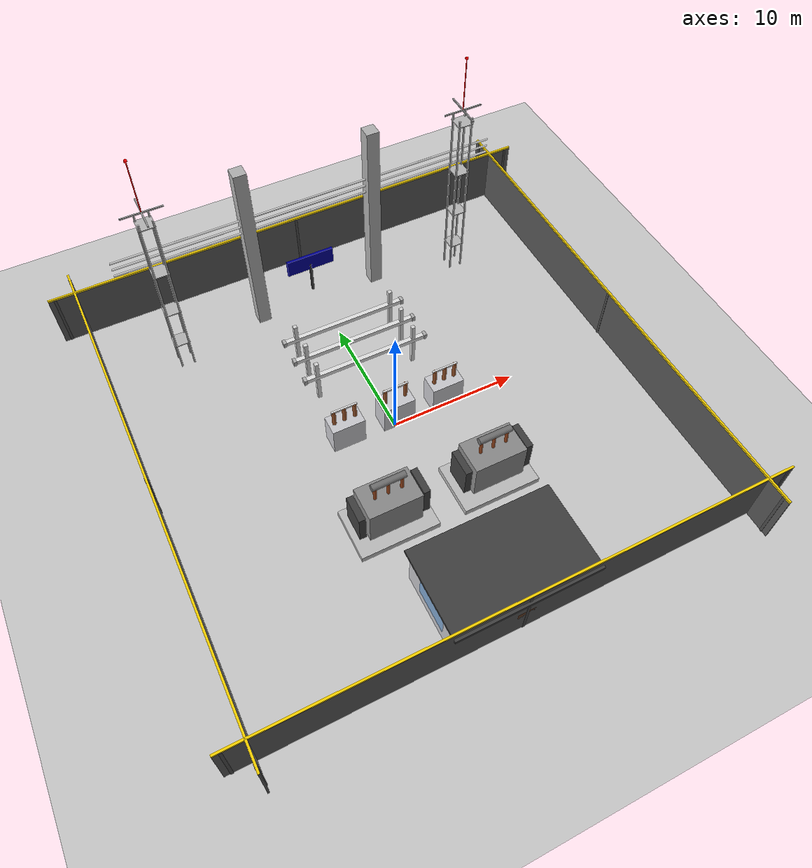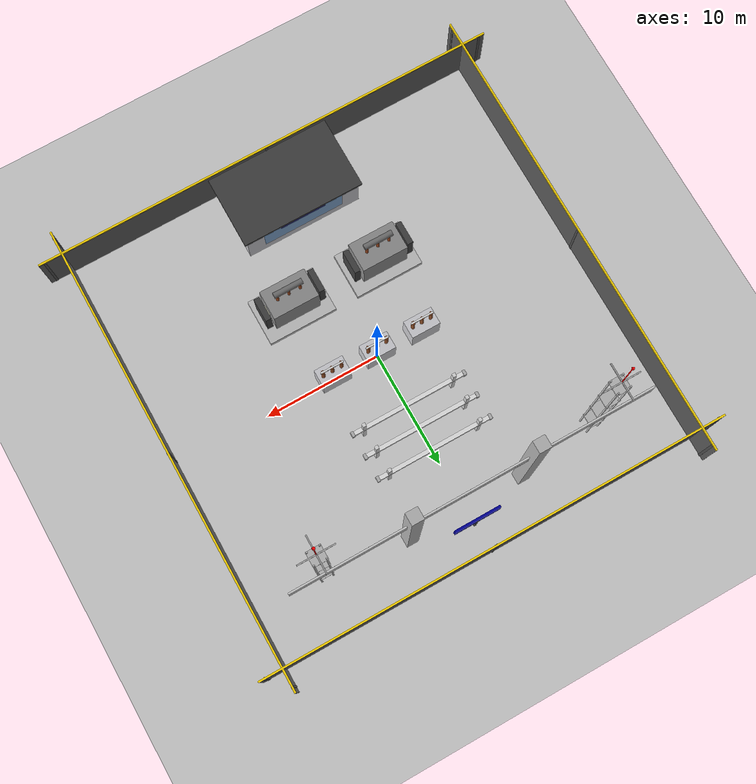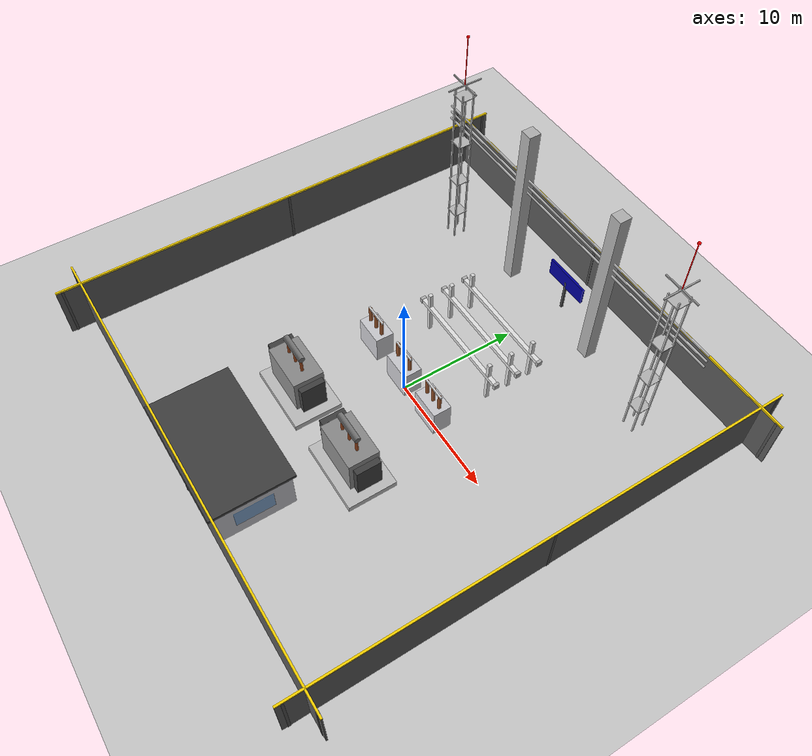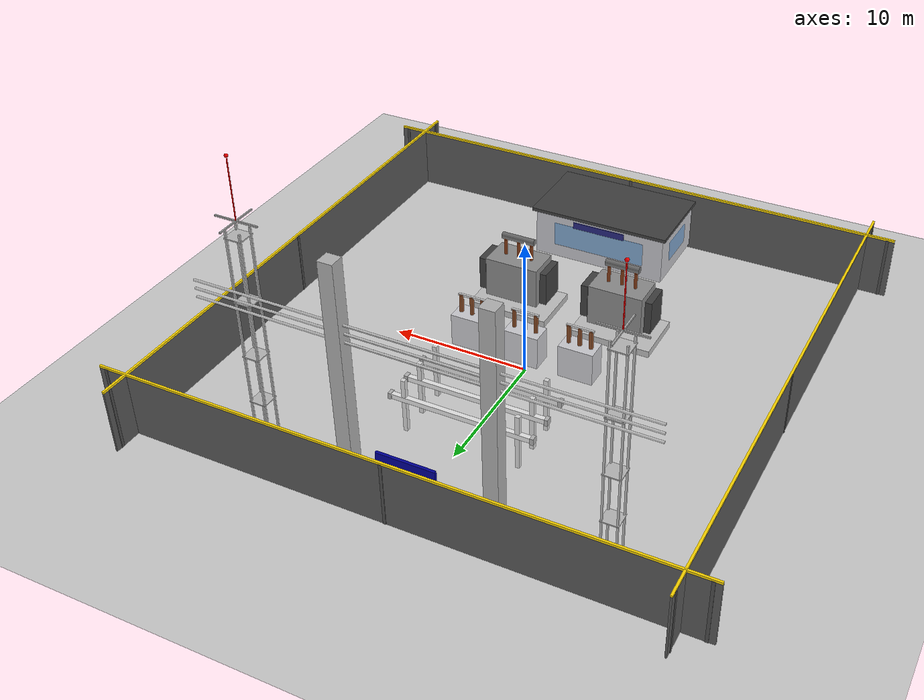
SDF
<?xml version="1.0"?>

<sdf version="1.10">

<world name="substation">

  <!-- GROUND -->
  <include>
    <uri>model://ground</uri>
    <name>ground</name>
    <pose>0 0 -0.1 0 0 0</pose>
  </include>

  <!-- FENCE -->
  <include><uri>model://fence</uri><name>fence_north</name><pose>0 18 1.25 0 0 0</pose></include>
  <include><uri>model://fence</uri><name>fence_south</name><pose>0 -18 1.25 0 0 0</pose></include>
  <include><uri>model://fence</uri><name>fence_east</name><pose>18 0 1.25 0 0 1.57</pose></include>
  <include><uri>model://fence</uri><name>fence_west</name><pose>-18 0 1.25 0 0 1.57</pose></include>

  <!-- TRANSMISSION TOWERS -->
  <include>
    <uri>model://tower</uri>
    <name>tower_left</name>
    <pose>-5 14 8 0 0 0</pose>
  </include>

  <include>
    <uri>model://tower</uri>
    <name>tower_right</name>
    <pose>5 14 8 0 0 0</pose>
  </include>

  <!-- 3 PHASE CONDUCTORS -->
  <include><uri>model://conductor</uri><name>left_A</name><pose>-5 14 10.0 0 0 0</pose></include>
  <include><uri>model://conductor</uri><name>left_B</name><pose>-5 14 10.6 0 0 0</pose></include>
  <include><uri>model://conductor</uri><name>left_C</name><pose>-5 14 11.2 0 0 0</pose></include>

  <include><uri>model://conductor</uri><name>right_A</name><pose>5 14 10.0 0 0 0</pose></include>
  <include><uri>model://conductor</uri><name>right_B</name><pose>5 14 10.6 0 0 0</pose></include>
  <include><uri>model://conductor</uri><name>right_C</name><pose>5 14 11.2 0 0 0</pose></include>

  <!-- BUSBAR SUPPORTS -->
  <include><uri>model://busbar_support</uri><name>support_A_left</name><pose>-4 5 0 0 0 0</pose></include>
  <include><uri>model://busbar_support</uri><name>support_A_right</name><pose>4 5 0 0 0 0</pose></include>

  <include><uri>model://busbar_support</uri><name>support_B_left</name><pose>-4 7 0 0 0 0</pose></include>
  <include><uri>model://busbar_support</uri><name>support_B_right</name><pose>4 7 0 0 0 0</pose></include>

  <include><uri>model://busbar_support</uri><name>support_C_left</name><pose>-4 9 0 0 0 0</pose></include>
  <include><uri>model://busbar_support</uri><name>support_C_right</name><pose>4 9 0 0 0 0</pose></include>

  <!-- 3 PHASE BUSBARS -->
  <include>
    <uri>model://busbar</uri>
    <name>busbar_A</name>
    <pose>0 5 2.5 0 0 0</pose>
  </include>

  <include>
    <uri>model://busbar</uri>
    <name>busbar_B</name>
    <pose>0 7 2.5 0 0 0</pose>
  </include>

  <include>
    <uri>model://busbar</uri>
    <name>busbar_C</name>
    <pose>0 9 2.5 0 0 0</pose>
  </include>

  <!-- BREAKERS -->
  <include>
    <uri>model://breaker</uri>
    <name>breaker_left</name>
    <pose>-4 0 1 0 0 0</pose>
  </include>

  <include>
    <uri>model://breaker</uri>
    <name>breaker_center</name>
    <pose>0 0 1 0 0 0</pose>
  </include>

  <include>
    <uri>model://breaker</uri>
    <name>breaker_right</name>
    <pose>4 0 1 0 0 0</pose>
  </include>

  <!-- TRANSFORMER PADS -->
  <include>
    <uri>model://transformer_pad</uri>
    <name>pad_left</name>
    <pose>-4 -7 0 0 0 0</pose>
  </include>

  <include>
    <uri>model://transformer_pad</uri>
    <name>pad_right</name>
    <pose>4 -7 0 0 0 0</pose>
  </include>

  <!-- TRANSFORMERS -->
  <include>
    <uri>model://transformer</uri>
    <name>transformer_left</name>
    <pose>-4 -7 1 0 0 0</pose>
  </include>

  <include>
    <uri>model://transformer</uri>
    <name>transformer_right</name>
    <pose>4 -7 1 0 0 0</pose>
  </include>

  <!-- CONTROL ROOM -->
  <include>
    <uri>model://control_room</uri>
    <name>control_room_main</name>
    <pose>0 -15 1.5 0 0 0</pose>
  </include>

  <!-- LIGHTNING TOWERS -->
  <include>
    <uri>model://lightning_arrester</uri>
    <name>arrester_left</name>
    <pose>-12 13 0 0 0 0</pose>
  </include>

  <include>
    <uri>model://lightning_arrester</uri>
    <name>arrester_right</name>
    <pose>12 13 0 0 0 0</pose>
  </include>

  <!-- NAME BOARD -->
  <include>
    <uri>model://name_board</uri>
    <name>substation_name_board</name>
    <pose>0 15.5 0 0 0 0</pose>
  </include>

  <!-- SUN -->
  <light name="sun" type="directional">
    <pose>0 0 50 0 0 0</pose>
    <cast_shadows>true</cast_shadows>
    <diffuse>1 1 1 1</diffuse>
    <specular>0.4 0.4 0.4 1</specular>
    <direction>-0.5 -0.4 -1</direction>
  </light>

</world>

</sdf>

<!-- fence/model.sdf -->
<sdf version="1.10">

  <model name="fence">

    <static>true</static>

    <link name="link">

      <!-- MAIN FENCE -->

      <visual name="fence_panel">

        <pose>0 0 2.25 0 0 0</pose>

        <geometry>
          <box>
            <size>40 0.12 4.5</size>
          </box>
        </geometry>

        <material>
          <ambient>0.25 0.25 0.25 1</ambient>
          <diffuse>0.35 0.35 0.35 1</diffuse>
          <specular>0.1 0.1 0.1 1</specular>
        </material>

      </visual>

      <!-- TOP SAFETY STRIPE -->

      <visual name="warning_strip">

        <pose>0 0 4.55 0 0 0</pose>

        <geometry>
          <box>
            <size>40 0.15 0.15</size>
          </box>
        </geometry>

        <material>
          <ambient>1 0.85 0 1</ambient>
          <diffuse>1 0.85 0 1</diffuse>
        </material>

      </visual>

      <!-- LEFT POST -->

      <visual name="post_left">

        <pose>-19.5 0 2.25 0 0 0</pose>

        <geometry>
          <box>
            <size>0.2 0.2 4.5</size>
          </box>
        </geometry>

        <material>
          <ambient>0.2 0.2 0.2 1</ambient>
          <diffuse>0.3 0.3 0.3 1</diffuse>
        </material>

      </visual>

      <!-- CENTER POST -->

      <visual name="post_center">

        <pose>0 0 2.25 0 0 0</pose>

        <geometry>
          <box>
            <size>0.2 0.2 4.5</size>
          </box>
        </geometry>

        <material>
          <ambient>0.2 0.2 0.2 1</ambient>
          <diffuse>0.3 0.3 0.3 1</diffuse>
        </material>

      </visual>

      <!-- RIGHT POST -->

      <visual name="post_right">

        <pose>19.5 0 2.25 0 0 0</pose>

        <geometry>
          <box>
            <size>0.2 0.2 4.5</size>
          </box>
        </geometry>

        <material>
          <ambient>0.2 0.2 0.2 1</ambient>
          <diffuse>0.3 0.3 0.3 1</diffuse>
        </material>

      </visual>

      <!-- COLLISION -->

      <collision name="collision">

        <pose>0 0 2.25 0 0 0</pose>

        <geometry>
          <box>
            <size>40 0.12 4.5</size>
          </box>
        </geometry>

      </collision>

    </link>

  </model>

</sdf>

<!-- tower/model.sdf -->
<sdf version="1.10">

  <model name="tower">

    <static>true</static>

    <link name="link">

      <visual name="tower_body">

        <geometry>
          <box>
            <size>1 1 15</size>
          </box>
        </geometry>

        <material>
  <ambient>0.7 0.7 0.7 1</ambient>
  <diffuse>0.7 0.7 0.7 1</diffuse>
</material>
      </visual>

      <collision name="collision">

        <geometry>
          <box>
            <size>1 1 15</size>
          </box>
        </geometry>

      </collision>

    </link>

  </model>

</sdf>

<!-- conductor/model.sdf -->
<sdf version="1.10">

  <model name="conductor">

    <static>true</static>

    <link name="link">

      <visual name="wire">

        <pose>0 0 0 0 1.57 0</pose>

        <geometry>
          <cylinder>
            <radius>0.08</radius>
            <length>20</length>
          </cylinder>
        </geometry>
        <material>
  <ambient>0.85 0.85 0.85 1</ambient>
  <diffuse>0.85 0.85 0.85 1</diffuse>
</material>

      </visual>

    </link>

  </model>

</sdf>

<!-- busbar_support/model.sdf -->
<sdf version="1.10">

  <model name="busbar_support">

    <static>true</static>

    <link name="link">

      <!-- VISUAL -->
      <visual name="support">

        <!-- Half of height (4m / 2 = 2m) -->
        <pose>0 0 2 0 0 0</pose>

        <geometry>
          <box>
            <size>0.3 0.3 4</size>
          </box>
        </geometry>

        <material>
          <ambient>0.85 0.85 0.85 1</ambient>
          <diffuse>0.85 0.85 0.85 1</diffuse>
          <specular>0.2 0.2 0.2 1</specular>
        </material>

      </visual>

      <!-- COLLISION -->
      <collision name="collision">

        <pose>0 0 2 0 0 0</pose>

        <geometry>
          <box>
            <size>0.3 0.3 4</size>
          </box>
        </geometry>

      </collision>

    </link>

  </model>

</sdf>

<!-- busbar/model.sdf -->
<sdf version="1.10">

<model name="busbar">

  <static>true</static>

  <link name="link">

    <!-- MAIN BUSBAR -->

    <visual name="busbar_main">

      <geometry>
        <box>
          <size>10 0.35 0.35</size>
        </box>
      </geometry>

      <material>
        <ambient>0.85 0.85 0.85 1</ambient>
        <diffuse>0.90 0.90 0.90 1</diffuse>
        <specular>1.0 1.0 1.0 1</specular>
      </material>

    </visual>

    <!-- LEFT CLAMP -->

    <visual name="left_clamp">

      <pose>-5 0 0 0 0 0</pose>

      <geometry>
        <box>
          <size>0.25 0.45 0.45</size>
        </box>
      </geometry>

      <material>
        <ambient>0.6 0.6 0.6 1</ambient>
        <diffuse>0.7 0.7 0.7 1</diffuse>
      </material>

    </visual>

    <!-- RIGHT CLAMP -->

    <visual name="right_clamp">

      <pose>5 0 0 0 0 0</pose>

      <geometry>
        <box>
          <size>0.25 0.45 0.45</size>
        </box>
      </geometry>

      <material>
        <ambient>0.6 0.6 0.6 1</ambient>
        <diffuse>0.7 0.7 0.7 1</diffuse>
      </material>

    </visual>

    <!-- COLLISION -->

    <collision name="collision">

      <geometry>
        <box>
          <size>10 0.35 0.35</size>
        </box>
      </geometry>

    </collision>

  </link>

</model>

</sdf>

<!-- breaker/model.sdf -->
<sdf version="1.10">

<model name="breaker">

  <static>true</static>

  <link name="body">

    <!-- MAIN BREAKER TANK -->

    <visual name="tank">

      <pose>0 0 1.2 0 0 0</pose>

      <geometry>
        <box>
          <size>2.5 1.5 2.4</size>
        </box>
      </geometry>

      <material>
        <ambient>0.75 0.75 0.78 1</ambient>
        <diffuse>0.80 0.80 0.82 1</diffuse>
      </material>

    </visual>

    <!-- INSULATOR A -->

    <visual name="insulator_a">

      <pose>-0.8 0 3.0 0 0 0</pose>

      <geometry>
        <cylinder>
          <radius>0.15</radius>
          <length>1.5</length>
        </cylinder>
      </geometry>

      <material>
        <ambient>0.45 0.25 0.1 1</ambient>
        <diffuse>0.55 0.3 0.15 1</diffuse>
      </material>

    </visual>

    <!-- INSULATOR B -->

    <visual name="insulator_b">

      <pose>0 0 3.0 0 0 0</pose>

      <geometry>
        <cylinder>
          <radius>0.15</radius>
          <length>1.5</length>
        </cylinder>
      </geometry>

      <material>
        <ambient>0.45 0.25 0.1 1</ambient>
        <diffuse>0.55 0.3 0.15 1</diffuse>
      </material>

    </visual>

    <!-- INSULATOR C -->

    <visual name="insulator_c">

      <pose>0.8 0 3.0 0 0 0</pose>

      <geometry>
        <cylinder>
          <radius>0.15</radius>
          <length>1.5</length>
        </cylinder>
      </geometry>

      <material>
        <ambient>0.45 0.25 0.1 1</ambient>
        <diffuse>0.55 0.3 0.15 1</diffuse>
      </material>

    </visual>

    <!-- LEFT SUPPORT -->

    <visual name="support_left">

      <pose>-0.9 0 0.5 0 0 0</pose>

      <geometry>
        <box>
          <size>0.2 0.2 1</size>
        </box>
      </geometry>

      <material>
        <ambient>0.25 0.25 0.25 1</ambient>
        <diffuse>0.35 0.35 0.35 1</diffuse>
      </material>

    </visual>

    <!-- RIGHT SUPPORT -->

    <visual name="support_right">

      <pose>0.9 0 0.5 0 0 0</pose>

      <geometry>
        <box>
          <size>0.2 0.2 1</size>
        </box>
      </geometry>

      <material>
        <ambient>0.25 0.25 0.25 1</ambient>
        <diffuse>0.35 0.35 0.35 1</diffuse>
      </material>

    </visual>

    <!-- TOP BUS CONNECTION -->

    <visual name="top_bar">

      <pose>0 0 3.75 0 0 0</pose>

      <geometry>
        <box>
          <size>2.0 0.15 0.15</size>
        </box>
      </geometry>

      <material>
        <ambient>0.75 0.75 0.75 1</ambient>
        <diffuse>0.85 0.85 0.85 1</diffuse>
      </material>

    </visual>

    <!-- COLLISION -->

    <collision name="collision">

      <pose>0 0 1.2 0 0 0</pose>

      <geometry>
        <box>
          <size>2.5 1.5 2.4</size>
        </box>
      </geometry>

    </collision>

  </link>

</model>

</sdf>

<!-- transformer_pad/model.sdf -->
<sdf version="1.10">

  <model name="transformer_pad">

    <static>true</static>

    <link name="link">

      <visual name="pad">

        <pose>0 0 0.25 0 0 0</pose>

        <geometry>
          <box>
            <size>6 4 0.5</size>
          </box>
        </geometry>

        <material>
          <ambient>0.75 0.75 0.75 1</ambient>
          <diffuse>0.75 0.75 0.75 1</diffuse>
        </material>

      </visual>

      <collision name="collision">

        <pose>0 0 0.25 0 0 0</pose>

        <geometry>
          <box>
            <size>6 4 0.5</size>
          </box>
        </geometry>

      </collision>

    </link>

  </model>

</sdf>

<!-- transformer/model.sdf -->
<sdf version="1.10">

  <model name="transformer">

    <static>true</static>

    <link name="body">

      <!-- MAIN TANK -->
      <visual name="tank">

        <pose>0 0 1.5 0 0 0</pose>

        <geometry>
          <box>
            <size>4 2.5 3</size>
          </box>
        </geometry>

        <material>
          <ambient>0.55 0.55 0.55 1</ambient>
          <diffuse>0.55 0.55 0.55 1</diffuse>
        </material>

      </visual>

      <collision name="tank_collision">

        <pose>0 0 1.5 0 0 0</pose>

        <geometry>
          <box>
            <size>4 2.5 3</size>
          </box>
        </geometry>

      </collision>

      <!-- HV BUSHINGS -->

      <visual name="bushing_1">

        <pose>-1 0 3.6 0 0 0</pose>

        <geometry>
          <cylinder>
            <radius>0.12</radius>
            <length>1.2</length>
          </cylinder>
        </geometry>

        <material>
          <ambient>0.55 0.25 0.1 1</ambient>
          <diffuse>0.55 0.25 0.1 1</diffuse>
        </material>

      </visual>

      <visual name="bushing_2">

        <pose>0 0 3.6 0 0 0</pose>

        <geometry>
          <cylinder>
            <radius>0.12</radius>
            <length>1.2</length>
          </cylinder>
        </geometry>

        <material>
          <ambient>0.55 0.25 0.1 1</ambient>
          <diffuse>0.55 0.25 0.1 1</diffuse>
        </material>

      </visual>

      <visual name="bushing_3">

        <pose>1 0 3.6 0 0 0</pose>

        <geometry>
          <cylinder>
            <radius>0.12</radius>
            <length>1.2</length>
          </cylinder>
        </geometry>

        <material>
          <ambient>0.55 0.25 0.1 1</ambient>
          <diffuse>0.55 0.25 0.1 1</diffuse>
        </material>

      </visual>

      <!-- LEFT RADIATOR -->

      <visual name="radiator_left">

        <pose>-2.4 0 1.5 0 0 0</pose>

        <geometry>
          <box>
            <size>0.5 2 2.5</size>
          </box>
        </geometry>

        <material>
          <ambient>0.25 0.25 0.25 1</ambient>
          <diffuse>0.25 0.25 0.25 1</diffuse>
        </material>

      </visual>

      <!-- RIGHT RADIATOR -->

      <visual name="radiator_right">

        <pose>2.4 0 1.5 0 0 0</pose>

        <geometry>
          <box>
            <size>0.5 2 2.5</size>
          </box>
        </geometry>

        <material>
          <ambient>0.25 0.25 0.25 1</ambient>
          <diffuse>0.25 0.25 0.25 1</diffuse>
        </material>

      </visual>

      <!-- CONSERVATOR TANK -->

      <visual name="conservator">

        <pose>0 0 4.5 0 1.57 0</pose>

        <geometry>
          <cylinder>
            <radius>0.25</radius>
            <length>2.5</length>
          </cylinder>
        </geometry>

        <material>
          <ambient>0.45 0.45 0.45 1</ambient>
          <diffuse>0.45 0.45 0.45 1</diffuse>
        </material>

      </visual>

      <!-- NAMEPLATE -->

      <visual name="nameplate">

        <pose>2.05 0 1.5 0 0 0</pose>

        <geometry>
          <box>
            <size>0.05 0.8 0.6</size>
          </box>
        </geometry>

        <material>
          <ambient>0.9 0.9 0.8 1</ambient>
          <diffuse>0.9 0.9 0.8 1</diffuse>
        </material>

      </visual>

    </link>

  </model>

</sdf>

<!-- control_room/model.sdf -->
<sdf version="1.10">

<model name="control_room">

  <static>true</static>

  <link name="body">

    <!-- MAIN BUILDING -->

    <collision name="collision">
      <pose>0 0 1.75 0 0 0</pose>
      <geometry>
        <box>
          <size>10 6 3.5</size>
        </box>
      </geometry>
    </collision>

    <visual name="walls">
      <pose>0 0 1.75 0 0 0</pose>

      <geometry>
        <box>
          <size>10 6 3.5</size>
        </box>
      </geometry>

      <material>
        <ambient>0.85 0.85 0.88 1</ambient>
        <diffuse>0.78 0.78 0.80 1</diffuse>
      </material>
    </visual>

    <!-- ROOF -->

    <visual name="roof">

      <pose>0 0 3.65 0 0 0</pose>

      <geometry>
        <box>
          <size>10.5 6.5 0.25</size>
        </box>
      </geometry>

      <material>
        <ambient>0.2 0.2 0.2 1</ambient>
        <diffuse>0.25 0.25 0.25 1</diffuse>
      </material>

    </visual>

    <!-- FRONT GLASS WINDOW -->

    <visual name="front_window">

      <pose>0 3.02 1.9 0 0 0</pose>

      <geometry>
        <box>
          <size>7 0.05 1.8</size>
        </box>
      </geometry>

      <material>
        <ambient>0.2 0.5 0.8 0.5</ambient>
        <diffuse>0.3 0.6 0.9 0.5</diffuse>
      </material>

    </visual>

    <!-- SIDE WINDOWS -->

    <visual name="left_window">

      <pose>-5.02 0 1.8 0 0 1.57</pose>

      <geometry>
        <box>
          <size>3 0.05 1.5</size>
        </box>
      </geometry>

      <material>
        <ambient>0.2 0.5 0.8 0.5</ambient>
        <diffuse>0.3 0.6 0.9 0.5</diffuse>
      </material>

    </visual>

    <visual name="right_window">

      <pose>5.02 0 1.8 0 0 1.57</pose>

      <geometry>
        <box>
          <size>3 0.05 1.5</size>
        </box>
      </geometry>

      <material>
        <ambient>0.2 0.5 0.8 0.5</ambient>
        <diffuse>0.3 0.6 0.9 0.5</diffuse>
      </material>

    </visual>

    <!-- ENTRANCE DOOR -->

    <visual name="door">

      <pose>0 -3.02 1.1 0 0 0</pose>

      <geometry>
        <box>
          <size>1.3 0.08 2.2</size>
        </box>
      </geometry>

      <material>
        <ambient>0.35 0.2 0.1 1</ambient>
        <diffuse>0.4 0.25 0.15 1</diffuse>
      </material>

    </visual>

    <!-- MAIN CONTROL CONSOLE -->

    <visual name="console">

      <pose>0 0.5 0.8 0 0 0</pose>

      <geometry>
        <box>
          <size>4 1.2 1</size>
        </box>
      </geometry>

      <material>
        <ambient>0.15 0.15 0.15 1</ambient>
        <diffuse>0.2 0.2 0.2 1</diffuse>
      </material>

    </visual>

    <!-- ELECTRICAL CABINET -->

    <visual name="cabinet">

      <pose>-3 0 1 0 0 0</pose>

      <geometry>
        <box>
          <size>1 0.8 2</size>
        </box>
      </geometry>

      <material>
        <ambient>0.7 0.7 0.7 1</ambient>
        <diffuse>0.75 0.75 0.75 1</diffuse>
      </material>

    </visual>

    <!-- SUBSTATION NAME BOARD -->

    <visual name="name_panel">

      <pose>0 3.05 3.0 0 0 0</pose>

      <geometry>
        <box>
          <size>4 0.05 0.5</size>
        </box>
      </geometry>

      <material>
        <ambient>0.1 0.1 0.4 1</ambient>
        <diffuse>0.15 0.15 0.5 1</diffuse>
      </material>

    </visual>

  </link>

</model>

</sdf>

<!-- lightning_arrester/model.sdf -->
<sdf version="1.10">

<model name="lightning_arrester">

  <static>true</static>

  <link name="tower">

    <!-- MAIN LEGS -->

    <visual name="leg1">
      <pose>0.5 0.5 7.5 0 0 0</pose>
      <geometry>
        <box>
          <size>0.12 0.12 15</size>
        </box>
      </geometry>
      <material>
        <ambient>0.75 0.75 0.75 1</ambient>
        <diffuse>0.75 0.75 0.75 1</diffuse>
      </material>
    </visual>

    <visual name="leg2">
      <pose>-0.5 0.5 7.5 0 0 0</pose>
      <geometry>
        <box>
          <size>0.12 0.12 15</size>
        </box>
      </geometry>
      <material>
        <ambient>0.75 0.75 0.75 1</ambient>
        <diffuse>0.75 0.75 0.75 1</diffuse>
      </material>
    </visual>

    <visual name="leg3">
      <pose>-0.5 -0.5 7.5 0 0 0</pose>
      <geometry>
        <box>
          <size>0.12 0.12 15</size>
        </box>
      </geometry>
      <material>
        <ambient>0.75 0.75 0.75 1</ambient>
        <diffuse>0.75 0.75 0.75 1</diffuse>
      </material>
    </visual>

    <visual name="leg4">
      <pose>0.5 -0.5 7.5 0 0 0</pose>
      <geometry>
        <box>
          <size>0.12 0.12 15</size>
        </box>
      </geometry>
      <material>
        <ambient>0.75 0.75 0.75 1</ambient>
        <diffuse>0.75 0.75 0.75 1</diffuse>
      </material>
    </visual>

    <!-- HORIZONTAL FRAMES -->

    <visual name="frame_bottom">
      <pose>0 0 2.5 0 0 0</pose>
      <geometry>
        <box>
          <size>1.2 1.2 0.08</size>
        </box>
      </geometry>
    </visual>

    <visual name="frame_mid1">
      <pose>0 0 6 0 0 0</pose>
      <geometry>
        <box>
          <size>1.2 1.2 0.08</size>
        </box>
      </geometry>
    </visual>

    <visual name="frame_mid2">
      <pose>0 0 10 0 0 0</pose>
      <geometry>
        <box>
          <size>1.2 1.2 0.08</size>
        </box>
      </geometry>
    </visual>

    <visual name="frame_top">
      <pose>0 0 14.5 0 0 0</pose>
      <geometry>
        <box>
          <size>1.2 1.2 0.08</size>
        </box>
      </geometry>
    </visual>

    <!-- CROSS ARMS -->

    <visual name="crossarm_x">
      <pose>0 0 15.5 0 0 0</pose>
      <geometry>
        <box>
          <size>3 0.1 0.1</size>
        </box>
      </geometry>

      <material>
        <ambient>0.65 0.65 0.65 1</ambient>
        <diffuse>0.65 0.65 0.65 1</diffuse>
      </material>
    </visual>

    <visual name="crossarm_y">
      <pose>0 0 15.5 0 0 1.57</pose>
      <geometry>
        <box>
          <size>3 0.1 0.1</size>
        </box>
      </geometry>

      <material>
        <ambient>0.65 0.65 0.65 1</ambient>
        <diffuse>0.65 0.65 0.65 1</diffuse>
      </material>
    </visual>

    <!-- LIGHTNING SPIKE -->

    <visual name="lightning_rod">
      <pose>0 0 17.5 0 0 0</pose>
      <geometry>
        <cylinder>
          <radius>0.04</radius>
          <length>4</length>
        </cylinder>
      </geometry>

      <material>
        <ambient>1 0 0 1</ambient>
        <diffuse>1 0 0 1</diffuse>
      </material>
    </visual>

    <!-- WARNING LIGHT -->

    <visual name="warning_light">
      <pose>0 0 19.7 0 0 0</pose>
      <geometry>
        <sphere>
          <radius>0.12</radius>
        </sphere>
      </geometry>

      <material>
        <ambient>1 0 0 1</ambient>
        <diffuse>1 0 0 1</diffuse>
      </material>
    </visual>

    <!-- COLLISION -->

    <collision name="collision">
      <pose>0 0 7.5 0 0 0</pose>
      <geometry>
        <box>
          <size>1.2 1.2 15</size>
        </box>
      </geometry>
    </collision>

  </link>

</model>

</sdf>

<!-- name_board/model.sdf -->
<sdf version="1.10">

<model name="name_board">

  <static>true</static>

  <link name="board">

    <!-- POLE -->
    <visual name="pole">
      <pose>0 0 1.5 0 0 0</pose>
      <geometry>
        <box>
          <size>0.2 0.2 3</size>
        </box>
      </geometry>
      <material>
        <ambient>0.3 0.3 0.3 1</ambient>
        <diffuse>0.3 0.3 0.3 1</diffuse>
      </material>
    </visual>

    <!-- BOARD -->
    <visual name="sign">

      <pose>0 0 3.2 0 0 0</pose>

      <geometry>
        <box>
          <size>4 0.2 1.5</size>
        </box>
      </geometry>

      <material>
        <ambient>0 0 0.6 1</ambient>
        <diffuse>0 0 0.6 1</diffuse>
      </material>

    </visual>

  </link>

</model>

</sdf>
